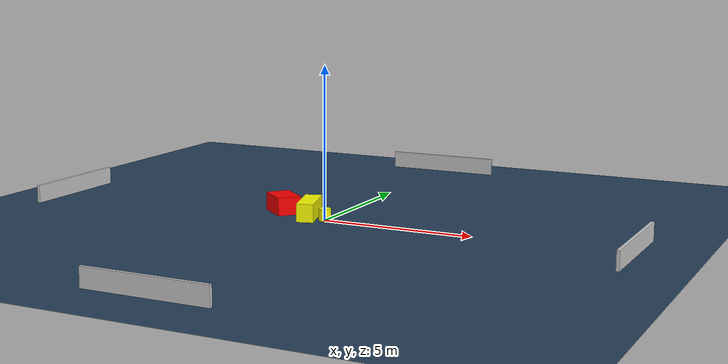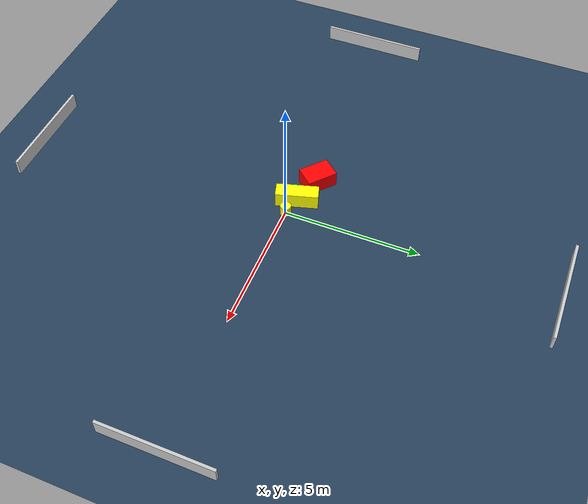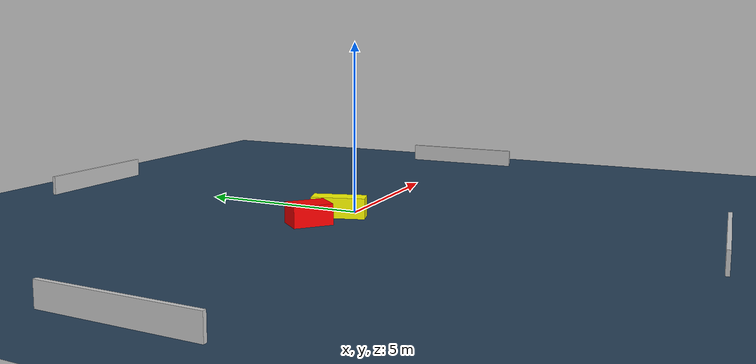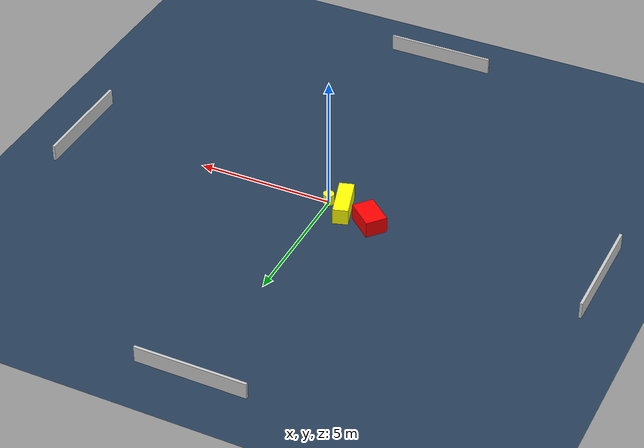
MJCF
<?xml version="1.0" ?>
<mujoco model="generated_environment">
  <option timestep="0.01" integrator="RK4" cone="elliptic"/>
  <default>
    <geom density="1"/>
  </default>
  <asset>
    <texture builtin="gradient" height="3072" name="skybox" rgb1="0.3 0.5 0.7" rgb2="0 0 0" type="skybox" width="512"/>
    <texture builtin="checker" height="300" name="groundplane" rgb1="0.2 0.3 0.4" rgb2="0.1 0.2 0.3" type="2d" width="300"/>
    <material name="groundplane" reflectance="0.2" texrepeat="5 5" texture="groundplane"/>
  </asset>
  <worldbody>
    <light dir="0 0 -1" directional="true" pos="0 0 1.5"/>
    <geom condim="3" friction="0.5 0.005 0.001" material="groundplane" name="floor" pos="0 0 0" size="0 0 0.05" type="plane"/>
    <body name="walls">
      <geom name="wall_1" condim="4" pos="-10.0 0.0 0.3" rgba="0.800000011920929 0.800000011920929 0.800000011920929 1.0" size="0.05 2.0 0.3" type="box"/>
      <geom name="wall_2" condim="4" pos="10.0 0.0 0.3" rgba="0.800000011920929 0.800000011920929 0.800000011920929 1.0" size="0.05 2.0 0.3" type="box"/>
      <geom name="wall_3" condim="4" pos="0.0 -10.0 0.3" rgba="0.800000011920929 0.800000011920929 0.800000011920929 1.0" size="2.0 0.05 0.3" type="box"/>
      <geom name="wall_4" condim="4" pos="0.0 10.0 0.3" rgba="0.800000011920929 0.800000011920929 0.800000011920929 1.0" size="2.0 0.05 0.3" type="box"/>
    </body>
    <body name="robot">
      <joint name="joint_x" type="slide" pos="0 0 0" axis="1 0 0"/>
      <joint name="joint_y" type="slide" pos="0 0 0" axis="0 1 0"/>
      <geom name="robot" type="cylinder" pos="0.0 0.0 0.2" size="0.2 0.2 0.0" mass="5.0" friction="1.0 0.005 0.0001" condim="4" rgba="1.0 1.0 0.0 1.0"/>
    </body>
    <body name="obstacle_1_movable">
      <geom name="obstacle_1_movable" condim="4" pos="-0.6622309745443191 0.18100768655206737 0.3" euler="0 0 106.53666417776364" friction="0.0 0.005 0.001" rgba="1.0 1.0 0.0 1.0" size="0.7802099929379427 0.27340228739597583 0.3" type="box" mass="0.1"/>
      <joint type="free"/>
    </body>
    <body name="obstacle_2_static">
      <geom name="obstacle_2_static" condim="4" pos="-1.81604917747915 0.5404175707199842 0.3" euler="0 0 319.20237618471214" friction="0.0 0.005 0.001" rgba="1.0 0.0 0.0 1.0" size="0.5748323382405599 0.3955769830961344 0.3" type="box"/>
    </body>
  </worldbody>
  <actuator>
    <motor name="actuator_x" joint="joint_x" gear="1" ctrlrange="-1 1"/>
    <motor name="actuator_y" joint="joint_y" gear="1" ctrlrange="-1 1"/>
  </actuator>
</mujoco>
